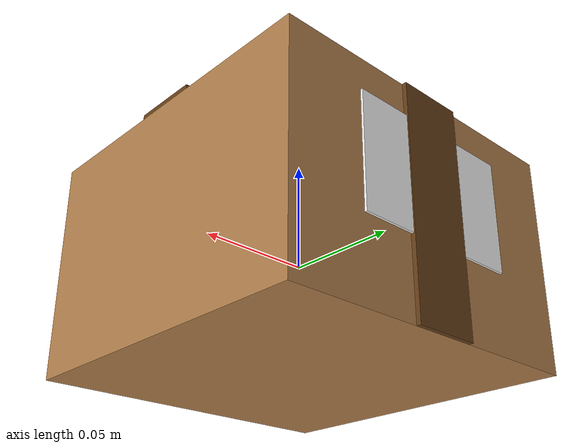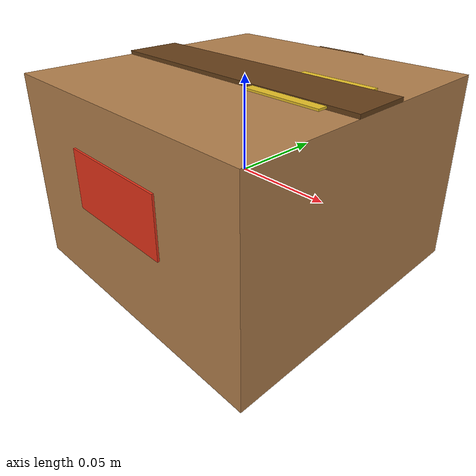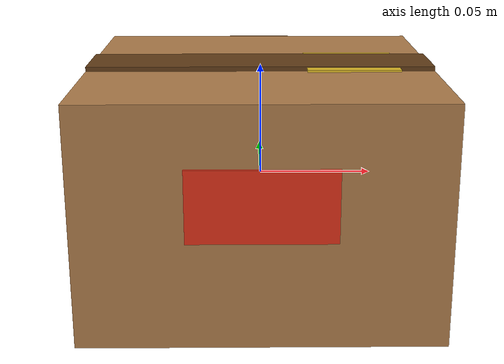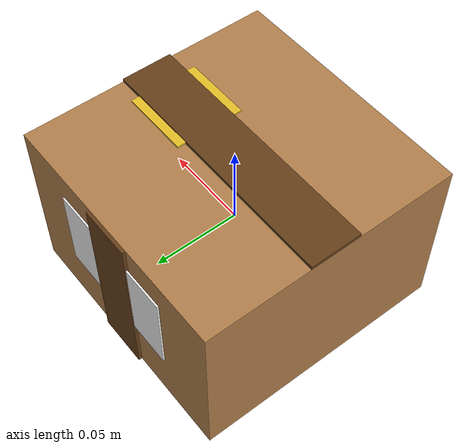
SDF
<?xml version="1.0"?>
<sdf version="1.9">
  <model name="delivery_package">
    <static>false</static>

    <!-- Main package body -->
    <link name="package_link">
      <inertial>
        <mass>0.2</mass>
        <inertia>
          <ixx>0.000117</ixx>
          <ixy>0</ixy>
          <ixz>0</ixz>
          <iyy>0.000092</iyy>
          <iyz>0</iyz>
          <izz>0.000117</izz>
        </inertia>
      </inertial>

      <!-- Main cardboard box -->
      <visual name="box_visual">
        <geometry>
          <box><size>0.15 0.15 0.10</size></box>
        </geometry>
        <material>
          <ambient>0.6 0.45 0.25 1</ambient>
          <diffuse>0.7 0.5 0.3 1</diffuse>
          <specular>0.1 0.1 0.1 1</specular>
        </material>
      </visual>

      <!-- Tape stripe (top, dark brown) -->
      <visual name="tape_top">
        <pose>0 0 0.051 0 0 0</pose>
        <geometry>
          <box><size>0.15 0.03 0.002</size></box>
        </geometry>
        <material>
          <ambient>0.35 0.2 0.08 1</ambient>
          <diffuse>0.4 0.25 0.1 1</diffuse>
        </material>
      </visual>

      <!-- Tape stripe (side, dark brown) -->
      <visual name="tape_side_front">
        <pose>0 0.076 0 0 0 0</pose>
        <geometry>
          <box><size>0.03 0.002 0.10</size></box>
        </geometry>
        <material>
          <ambient>0.35 0.2 0.08 1</ambient>
          <diffuse>0.4 0.25 0.1 1</diffuse>
        </material>
      </visual>

      <!-- Label (white rectangle on side) -->
      <visual name="label">
        <pose>0 0.076 0.01 0 0 0</pose>
        <geometry>
          <box><size>0.08 0.001 0.05</size></box>
        </geometry>
        <material>
          <ambient>0.9 0.9 0.9 1</ambient>
          <diffuse>0.95 0.95 0.95 1</diffuse>
        </material>
      </visual>

      <!-- "FRAGILE" marker (red rectangle on other side) -->
      <visual name="fragile_marker">
        <pose>0 -0.076 0.01 0 0 0</pose>
        <geometry>
          <box><size>0.06 0.001 0.03</size></box>
        </geometry>
        <material>
          <ambient>0.8 0.15 0.1 1</ambient>
          <diffuse>0.9 0.2 0.1 1</diffuse>
        </material>
      </visual>

      <!-- BoilerHawk logo marker (gold rectangle on top) -->
      <visual name="logo_marker">
        <pose>0.04 0 0.051 0 0 0</pose>
        <geometry>
          <box><size>0.04 0.04 0.001</size></box>
        </geometry>
        <material>
          <ambient>0.8 0.65 0.1 1</ambient>
          <diffuse>0.9 0.75 0.15 1</diffuse>
        </material>
      </visual>

      <collision name="collision">
        <geometry>
          <box><size>0.15 0.15 0.10</size></box>
        </geometry>
        <surface>
          <friction>
            <ode>
              <mu>1.0</mu>
              <mu2>1.0</mu2>
            </ode>
          </friction>
        </surface>
      </collision>
    </link>
  </model>
</sdf>
